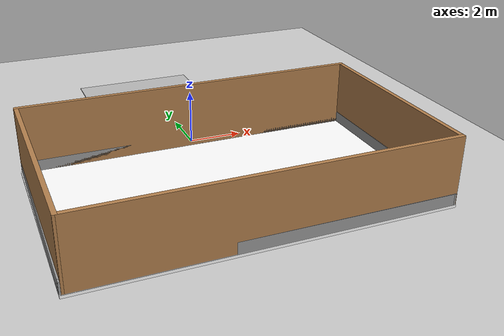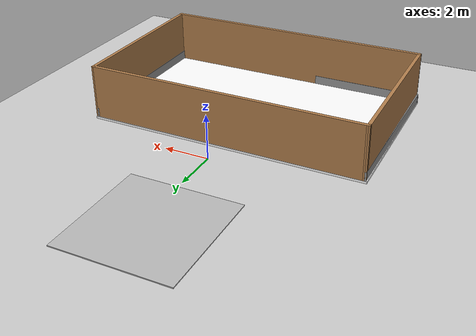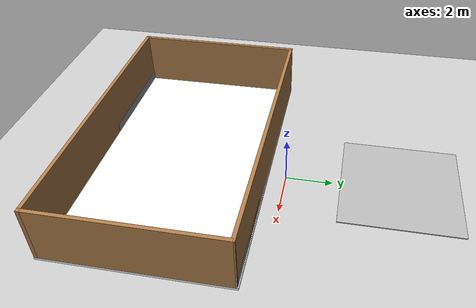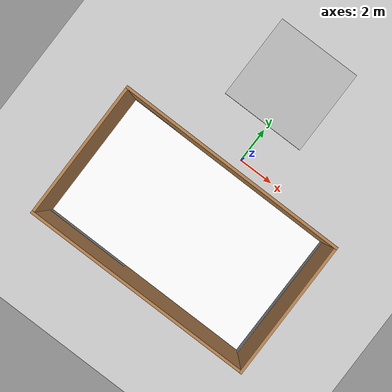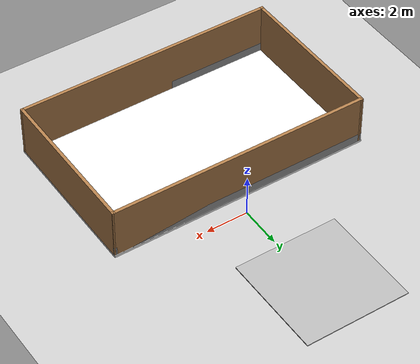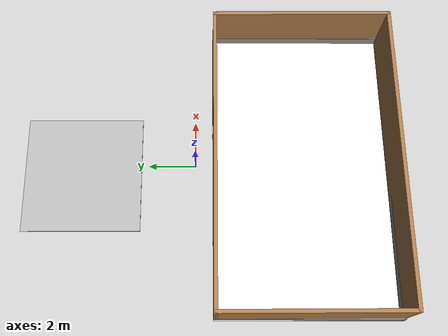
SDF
<sdf version="1.6">
 <world name="default">
  <light name="sun" type="directional">
   <pose>0 0 10 0 -0 0</pose>
   <diffuse>0.8 0.8 0.8 1</diffuse>
   <specular>0.2 0.2 0.2 1</specular>
   <attenuation>
    <range>1000</range>
    <constant>0.9</constant>
    <linear>0.01</linear>
    <quadratic>0.001</quadratic>
   </attenuation>
   <direction>-0.5 0.1 -0.9</direction>
  </light>
  <model name="ground_plane">
   <static>1</static>
   <link name="link">
    <collision name="collision">
     <geometry><plane><normal>0 0 1</normal><size>100 100</size></plane></geometry>
     <surface>
      <contact><collide_bitmask>65535</collide_bitmask></contact>
      <friction><ode><mu>100</mu><mu2>50</mu2></ode></friction>
     </surface>
    </collision>
    <visual name="visual">
     <cast_shadows>0</cast_shadows>
     <geometry><plane><normal>0 0 1</normal><size>100 100</size></plane></geometry>
     <material>
      <script><uri>file://media/materials/scripts/gazebo.material</uri><name>Gazebo/Grey</name></script>
     </material>
    </visual>
   </link>
  </model>
  <gravity>0 0 -9.8</gravity>
  <magnetic_field>6e-06 2.3e-05 -4.2e-05</magnetic_field>
  <atmosphere type="adiabatic"/>
  <physics name="default_physics" default="0" type="ode">
   <max_step_size>0.001</max_step_size>
   <real_time_factor>1</real_time_factor>
   <real_time_update_rate>1000</real_time_update_rate>
  </physics>
  <scene><ambient>0.4 0.4 0.4 1</ambient><background>0.7 0.7 0.7 1</background><shadows>1</shadows></scene>
  <audio><device>default</device></audio>
  <spherical_coordinates>
   <surface_model>EARTH_WGS84</surface_model>
   <latitude_deg>0</latitude_deg>
   <longitude_deg>0</longitude_deg>
   <elevation>0</elevation>
   <heading_deg>0</heading_deg>
  </spherical_coordinates>
  <model name="sala_seguidor">
   <link name="Floor_0">
    <pose>0 1e-06 0.5 0 -0 0</pose>
    <collision name="Floor_0_Collision">
     <pose>0 0 0.05 0 -0 0</pose>
     <geometry><box><size>12.5597 7.55672 0.1</size></box></geometry>
     <surface>
      <friction>
       <ode><mu>0.8</mu><mu2>0.8</mu2><fdir1>0 0 0</fdir1><slip1>0</slip1><slip2>0</slip2></ode>
       <torsional>
        <coefficient>1</coefficient>
        <patch_radius>0</patch_radius>
        <surface_radius>0</surface_radius>
        <use_patch_radius>1</use_patch_radius>
        <ode><slip>0</slip></ode>
       </torsional>
      </friction>
      <bounce><restitution_coefficient>0</restitution_coefficient><threshold>1e+06</threshold></bounce>
      <contact>
       <collide_without_contact>0</collide_without_contact>
       <collide_without_contact_bitmask>1</collide_without_contact_bitmask>
       <collide_bitmask>1</collide_bitmask>
       <ode>
        <soft_cfm>0</soft_cfm>
        <soft_erp>0.2</soft_erp>
        <kp>1e+13</kp>
        <kd>1</kd>
        <max_vel>0.01</max_vel>
        <min_depth>0</min_depth>
       </ode>
       <bullet>
        <split_impulse>1</split_impulse>
        <split_impulse_penetration_threshold>-0.01</split_impulse_penetration_threshold>
        <soft_cfm>0</soft_cfm>
        <soft_erp>0.2</soft_erp>
        <kp>1e+13</kp>
        <kd>1</kd>
       </bullet>
      </contact>
     </surface>
    </collision>
    <visual name="Floor_0_Visual">
     <pose>0 0 0.05 0 -0 0</pose>
     <geometry><box><size>12.5597 7.55672 0.1</size></box></geometry>
     <material>
      <ambient>1 1 1 1</ambient>
      <script>
       <uri>models://sala_seguidor/materials/scripts</uri>
       <uri>models://sala_seguidor/materials/texture</uri>
       <name>ReapetTexture</name>
      </script>
     </material>
     <meta><layer>1</layer></meta>
    </visual>
   </link>
   <link name="Wall_13">
    <pose>0.018005 3.6855 0.5 0 0 -0.002829</pose>
    <visual name="Wall_13_Visual">
     <pose>0 0 0.25 0 -0 0</pose>
     <geometry><box><size>12.523 0.15 0.5</size></box></geometry>
     <material>
      <script><uri>file://media/materials/scripts/gazebo.material</uri><name>Gazebo/Grey</name></script>
      <ambient>1 1 1 1</ambient>
     </material>
     <meta><layer>1</layer></meta>
    </visual>
    <collision name="Wall_13_Collision">
     <pose>0 0 0.25 0 -0 0</pose>
     <geometry><box><size>12.523 0.15 0.5</size></box></geometry>
     <surface>
      <friction>
       <ode><mu>1</mu><mu2>1</mu2><fdir1>0 0 0</fdir1><slip1>0</slip1><slip2>0</slip2></ode>
       <torsional>
        <coefficient>1</coefficient>
        <patch_radius>0</patch_radius>
        <surface_radius>0</surface_radius>
        <use_patch_radius>1</use_patch_radius>
        <ode><slip>0</slip></ode>
       </torsional>
      </friction>
      <bounce><restitution_coefficient>0</restitution_coefficient><threshold>1e+06</threshold></bounce>
      <contact>
       <collide_without_contact>0</collide_without_contact>
       <collide_without_contact_bitmask>1</collide_without_contact_bitmask>
       <collide_bitmask>1</collide_bitmask>
       <ode>
        <soft_cfm>0</soft_cfm>
        <soft_erp>0.2</soft_erp>
        <kp>1e+13</kp>
        <kd>1</kd>
        <max_vel>0.01</max_vel>
        <min_depth>0</min_depth>
       </ode>
       <bullet>
        <split_impulse>1</split_impulse>
        <split_impulse_penetration_threshold>-0.01</split_impulse_penetration_threshold>
        <soft_cfm>0</soft_cfm>
        <soft_erp>0.2</soft_erp>
        <kp>1e+13</kp>
        <kd>1</kd>
       </bullet>
      </contact>
     </surface>
    </collision>
   </link>
   <link name="Wall_14">
    <pose>6.18701 -0.017504 0.5 0 0 -1.57554</pose>
    <visual name="Wall_14_Visual">
     <pose>0 0 0.25 0 -0 0</pose>
     <geometry><box><size>7.52108 0.15 0.5</size></box></geometry>
     <material>
      <script><uri>file://media/materials/scripts/gazebo.material</uri><name>Gazebo/Grey</name></script>
      <ambient>1 1 1 1</ambient>
     </material>
     <meta><layer>1</layer></meta>
    </visual>
    <collision name="Wall_14_Collision">
     <pose>0 0 0.25 0 -0 0</pose>
     <geometry><box><size>7.52108 0.15 0.5</size></box></geometry>
     <surface>
      <friction>
       <ode><mu>1</mu><mu2>1</mu2><fdir1>0 0 0</fdir1><slip1>0</slip1><slip2>0</slip2></ode>
       <torsional>
        <coefficient>1</coefficient>
        <patch_radius>0</patch_radius>
        <surface_radius>0</surface_radius>
        <use_patch_radius>1</use_patch_radius>
        <ode><slip>0</slip></ode>
       </torsional>
      </friction>
      <bounce><restitution_coefficient>0</restitution_coefficient><threshold>1e+06</threshold></bounce>
      <contact>
       <collide_without_contact>0</collide_without_contact>
       <collide_without_contact_bitmask>1</collide_without_contact_bitmask>
       <collide_bitmask>1</collide_bitmask>
       <ode>
        <soft_cfm>0</soft_cfm>
        <soft_erp>0.2</soft_erp>
        <kp>1e+13</kp>
        <kd>1</kd>
        <max_vel>0.01</max_vel>
        <min_depth>0</min_depth>
       </ode>
       <bullet>
        <split_impulse>1</split_impulse>
        <split_impulse_penetration_threshold>-0.01</split_impulse_penetration_threshold>
        <soft_cfm>0</soft_cfm>
        <soft_erp>0.2</soft_erp>
        <kp>1e+13</kp>
        <kd>1</kd>
       </bullet>
      </contact>
     </surface>
    </collision>
   </link>
   <link name="Wall_15">
    <pose>-0.017495 -3.6855 0.5 0 -0 3.13876</pose>
    <visual name="Wall_15_Visual">
     <pose>0 0 0.25 0 -0 0</pose>
     <geometry><box><size>12.524 0.15 0.5</size></box></geometry>
     <material>
      <script><uri>file://media/materials/scripts/gazebo.material</uri><name>Gazebo/Grey</name></script>
      <ambient>1 1 1 1</ambient>
     </material>
     <meta><layer>1</layer></meta>
    </visual>
    <collision name="Wall_15_Collision">
     <pose>0 0 0.25 0 -0 0</pose>
     <geometry><box><size>12.524 0.15 0.5</size></box></geometry>
     <surface>
      <friction>
       <ode><mu>1</mu><mu2>1</mu2><fdir1>0 0 0</fdir1><slip1>0</slip1><slip2>0</slip2></ode>
       <torsional>
        <coefficient>1</coefficient>
        <patch_radius>0</patch_radius>
        <surface_radius>0</surface_radius>
        <use_patch_radius>1</use_patch_radius>
        <ode><slip>0</slip></ode>
       </torsional>
      </friction>
      <bounce><restitution_coefficient>0</restitution_coefficient><threshold>1e+06</threshold></bounce>
      <contact>
       <collide_without_contact>0</collide_without_contact>
       <collide_without_contact_bitmask>1</collide_without_contact_bitmask>
       <collide_bitmask>1</collide_bitmask>
       <ode>
        <soft_cfm>0</soft_cfm>
        <soft_erp>0.2</soft_erp>
        <kp>1e+13</kp>
        <kd>1</kd>
        <max_vel>0.01</max_vel>
        <min_depth>0</min_depth>
       </ode>
       <bullet>
        <split_impulse>1</split_impulse>
        <split_impulse_penetration_threshold>-0.01</split_impulse_penetration_threshold>
        <soft_cfm>0</soft_cfm>
        <soft_erp>0.2</soft_erp>
        <kp>1e+13</kp>
        <kd>1</kd>
       </bullet>
      </contact>
     </surface>
    </collision>
   </link>
   <link name="Wall_16">
    <pose>-6.18649 0.017496 0.5 0 -0 1.56591</pose>
    <visual name="Wall_16_Visual">
     <pose>0 0 0.25 0 -0 0</pose>
     <geometry><box><size>7.52109 0.15 0.5</size></box></geometry>
     <material>
      <script><uri>file://media/materials/scripts/gazebo.material</uri><name>Gazebo/Grey</name></script>
      <ambient>1 1 1 1</ambient>
     </material>
     <meta><layer>1</layer></meta>
    </visual>
    <collision name="Wall_16_Collision">
     <pose>0 0 0.25 0 -0 0</pose>
     <geometry><box><size>7.52109 0.15 0.5</size></box></geometry>
     <surface>
      <friction>
       <ode><mu>1</mu><mu2>1</mu2><fdir1>0 0 0</fdir1><slip1>0</slip1><slip2>0</slip2></ode>
       <torsional>
        <coefficient>1</coefficient>
        <patch_radius>0</patch_radius>
        <surface_radius>0</surface_radius>
        <use_patch_radius>1</use_patch_radius>
        <ode><slip>0</slip></ode>
       </torsional>
      </friction>
      <bounce><restitution_coefficient>0</restitution_coefficient><threshold>1e+06</threshold></bounce>
      <contact>
       <collide_without_contact>0</collide_without_contact>
       <collide_without_contact_bitmask>1</collide_without_contact_bitmask>
       <collide_bitmask>1</collide_bitmask>
       <ode>
        <soft_cfm>0</soft_cfm>
        <soft_erp>0.2</soft_erp>
        <kp>1e+13</kp>
        <kd>1</kd>
        <max_vel>0.01</max_vel>
        <min_depth>0</min_depth>
       </ode>
       <bullet>
        <split_impulse>1</split_impulse>
        <split_impulse_penetration_threshold>-0.01</split_impulse_penetration_threshold>
        <soft_cfm>0</soft_cfm>
        <soft_erp>0.2</soft_erp>
        <kp>1e+13</kp>
        <kd>1</kd>
       </bullet>
      </contact>
     </surface>
    </collision>
   </link>
   <link name="Wall_20">
    <pose>0.018005 3.6855 0.5 0 0 -0.002829</pose>
    <visual name="Wall_20_Visual">
     <pose>0 0 1.25 0 -0 0</pose>
     <geometry><box><size>12.523 0.15 2.5</size></box></geometry>
     <material>
      <script><uri>file://media/materials/scripts/gazebo.material</uri><name>Gazebo/Wood</name></script>
      <ambient>1 1 1 1</ambient>
     </material>
     <meta><layer>1</layer></meta>
    </visual>
    <collision name="Wall_20_Collision">
     <pose>0 0 1.25 0 -0 0</pose>
     <geometry><box><size>12.523 0.15 2.5</size></box></geometry>
     <surface>
      <friction>
       <ode><mu>1</mu><mu2>1</mu2><fdir1>0 0 0</fdir1><slip1>0</slip1><slip2>0</slip2></ode>
       <torsional>
        <coefficient>1</coefficient>
        <patch_radius>0</patch_radius>
        <surface_radius>0</surface_radius>
        <use_patch_radius>1</use_patch_radius>
        <ode><slip>0</slip></ode>
       </torsional>
      </friction>
      <bounce><restitution_coefficient>0</restitution_coefficient><threshold>1e+06</threshold></bounce>
      <contact>
       <collide_without_contact>0</collide_without_contact>
       <collide_without_contact_bitmask>1</collide_without_contact_bitmask>
       <collide_bitmask>1</collide_bitmask>
       <ode>
        <soft_cfm>0</soft_cfm>
        <soft_erp>0.2</soft_erp>
        <kp>1e+13</kp>
        <kd>1</kd>
        <max_vel>0.01</max_vel>
        <min_depth>0</min_depth>
       </ode>
       <bullet>
        <split_impulse>1</split_impulse>
        <split_impulse_penetration_threshold>-0.01</split_impulse_penetration_threshold>
        <soft_cfm>0</soft_cfm>
        <soft_erp>0.2</soft_erp>
        <kp>1e+13</kp>
        <kd>1</kd>
       </bullet>
      </contact>
     </surface>
    </collision>
   </link>
   <link name="Wall_21">
    <pose>6.20451 -0.007004 0.5 0 0 -1.5708</pose>
    <visual name="Wall_21_Visual">
     <pose>0 0 1.25 0 -0 0</pose>
     <geometry><box><size>7.5 0.15 2.5</size></box></geometry>
     <material>
      <script><uri>file://media/materials/scripts/gazebo.material</uri><name>Gazebo/Wood</name></script>
      <ambient>1 1 1 1</ambient>
     </material>
     <meta><layer>1</layer></meta>
    </visual>
    <collision name="Wall_21_Collision">
     <pose>0 0 1.25 0 -0 0</pose>
     <geometry><box><size>7.5 0.15 2.5</size></box></geometry>
     <surface>
      <friction>
       <ode><mu>1</mu><mu2>1</mu2><fdir1>0 0 0</fdir1><slip1>0</slip1><slip2>0</slip2></ode>
       <torsional>
        <coefficient>1</coefficient>
        <patch_radius>0</patch_radius>
        <surface_radius>0</surface_radius>
        <use_patch_radius>1</use_patch_radius>
        <ode><slip>0</slip></ode>
       </torsional>
      </friction>
      <bounce><restitution_coefficient>0</restitution_coefficient><threshold>1e+06</threshold></bounce>
      <contact>
       <collide_without_contact>0</collide_without_contact>
       <collide_without_contact_bitmask>1</collide_without_contact_bitmask>
       <collide_bitmask>1</collide_bitmask>
       <ode>
        <soft_cfm>0</soft_cfm>
        <soft_erp>0.2</soft_erp>
        <kp>1e+13</kp>
        <kd>1</kd>
        <max_vel>0.01</max_vel>
        <min_depth>0</min_depth>
       </ode>
       <bullet>
        <split_impulse>1</split_impulse>
        <split_impulse_penetration_threshold>-0.01</split_impulse_penetration_threshold>
        <soft_cfm>0</soft_cfm>
        <soft_erp>0.2</soft_erp>
        <kp>1e+13</kp>
        <kd>1</kd>
       </bullet>
      </contact>
     </surface>
    </collision>
   </link>
   <link name="Wall_22">
    <pose>0.029505 -3.682 0.5 0 -0 3.14159</pose>
    <visual name="Wall_22_Visual">
     <pose>0 0 1.25 0 -0 0</pose>
     <geometry><box><size>12.5 0.15 2.5</size></box></geometry>
     <material>
      <script><uri>file://media/materials/scripts/gazebo.material</uri><name>Gazebo/Wood</name></script>
      <ambient>1 1 1 1</ambient>
     </material>
     <meta><layer>1</layer></meta>
    </visual>
    <collision name="Wall_22_Collision">
     <pose>0 0 1.25 0 -0 0</pose>
     <geometry><box><size>12.5 0.15 2.5</size></box></geometry>
     <surface>
      <friction>
       <ode><mu>1</mu><mu2>1</mu2><fdir1>0 0 0</fdir1><slip1>0</slip1><slip2>0</slip2></ode>
       <torsional>
        <coefficient>1</coefficient>
        <patch_radius>0</patch_radius>
        <surface_radius>0</surface_radius>
        <use_patch_radius>1</use_patch_radius>
        <ode><slip>0</slip></ode>
       </torsional>
      </friction>
      <bounce><restitution_coefficient>0</restitution_coefficient><threshold>1e+06</threshold></bounce>
      <contact>
       <collide_without_contact>0</collide_without_contact>
       <collide_without_contact_bitmask>1</collide_without_contact_bitmask>
       <collide_bitmask>1</collide_bitmask>
       <ode>
        <soft_cfm>0</soft_cfm>
        <soft_erp>0.2</soft_erp>
        <kp>1e+13</kp>
        <kd>1</kd>
        <max_vel>0.01</max_vel>
        <min_depth>0</min_depth>
       </ode>
       <bullet>
        <split_impulse>1</split_impulse>
        <split_impulse_penetration_threshold>-0.01</split_impulse_penetration_threshold>
        <soft_cfm>0</soft_cfm>
        <soft_erp>0.2</soft_erp>
        <kp>1e+13</kp>
        <kd>1</kd>
       </bullet>
      </contact>
     </surface>
    </collision>
   </link>
   <link name="Wall_23">
    <pose>-6.157 0.010496 0.5 0 -0 1.57391</pose>
    <visual name="Wall_23_Visual">
     <pose>0 0 1.25 0 -0 0</pose>
     <geometry><box><size>7.53504 0.15 2.5</size></box></geometry>
     <material>
      <script><uri>file://media/materials/scripts/gazebo.material</uri><name>Gazebo/Wood</name></script>
      <ambient>1 1 1 1</ambient>
     </material>
     <meta><layer>1</layer></meta>
    </visual>
    <collision name="Wall_23_Collision">
     <pose>0 0 1.25 0 -0 0</pose>
     <geometry><box><size>7.53504 0.15 2.5</size></box></geometry>
     <surface>
      <friction>
       <ode><mu>1</mu><mu2>1</mu2><fdir1>0 0 0</fdir1><slip1>0</slip1><slip2>0</slip2></ode>
       <torsional>
        <coefficient>1</coefficient>
        <patch_radius>0</patch_radius>
        <surface_radius>0</surface_radius>
        <use_patch_radius>1</use_patch_radius>
        <ode><slip>0</slip></ode>
       </torsional>
      </friction>
      <bounce><restitution_coefficient>0</restitution_coefficient><threshold>1e+06</threshold></bounce>
      <contact>
       <collide_without_contact>0</collide_without_contact>
       <collide_without_contact_bitmask>1</collide_without_contact_bitmask>
       <collide_bitmask>1</collide_bitmask>
       <ode>
        <soft_cfm>0</soft_cfm>
        <soft_erp>0.2</soft_erp>
        <kp>1e+13</kp>
        <kd>1</kd>
        <max_vel>0.01</max_vel>
        <min_depth>0</min_depth>
       </ode>
       <bullet>
        <split_impulse>1</split_impulse>
        <split_impulse_penetration_threshold>-0.01</split_impulse_penetration_threshold>
        <soft_cfm>0</soft_cfm>
        <soft_erp>0.2</soft_erp>
        <kp>1e+13</kp>
        <kd>1</kd>
       </bullet>
      </contact>
     </surface>
    </collision>
   </link>
   <static>1</static>
   <pose>-0.240695 -4.49172 -0.327691 0 -0 0</pose>
  </model>
  <model name="tapete_borracha">
   <link name="link_0">
    <inertial>
     <mass>2.58424</mass>
     <inertia><ixx>16.3966</ixx><ixy>0</ixy><ixz>0</ixz><iyy>25.0206</iyy><iyz>0</iyz><izz>41.4169</izz></inertia>
    </inertial>
    <visual name="visual">
     <geometry><box><size>5 5 0.05</size></box></geometry>
     <material>
      <script>
       <uri>models://tapete_borracha/materials/scripts</uri>
       <uri>models://tapete_borracha/materials/texture</uri>
       <name>tapeteMat/Diffuse</name>
      </script>
     </material>
    </visual>
    <collision name="collision">
     <geometry><box><size>5 5 0.05</size></box></geometry>
     <surface>
      <friction>
       <ode><mu>0.8</mu><mu2>0.8</mu2><fdir1>0 0 0</fdir1><slip1>0</slip1><slip2>0</slip2></ode>
       <torsional>
        <coefficient>1</coefficient>
        <patch_radius>0</patch_radius>
        <surface_radius>0</surface_radius>
        <use_patch_radius>1</use_patch_radius>
        <ode><slip>0</slip></ode>
       </torsional>
      </friction>
      <bounce><restitution_coefficient>0</restitution_coefficient><threshold>1e+06</threshold></bounce>
      <contact>
       <collide_without_contact>0</collide_without_contact>
       <collide_without_contact_bitmask>1</collide_without_contact_bitmask>
       <collide_bitmask>1</collide_bitmask>
       <ode>
        <soft_cfm>0</soft_cfm>
        <soft_erp>0.2</soft_erp>
        <kp>1e+13</kp>
        <kd>1</kd>
        <max_vel>0.01</max_vel>
        <min_depth>0</min_depth>
       </ode>
       <bullet>
        <split_impulse>1</split_impulse>
        <split_impulse_penetration_threshold>-0.01</split_impulse_penetration_threshold>
        <soft_cfm>0</soft_cfm>
        <soft_erp>0.2</soft_erp>
        <kp>1e+13</kp>
        <kd>1</kd>
       </bullet>
      </contact>
     </surface>
    </collision>
   </link>
   <static>0</static>
   <pose>-0.341636 4.8244 0 0 -0 0</pose>
  </model>
 </world>
</sdf>
